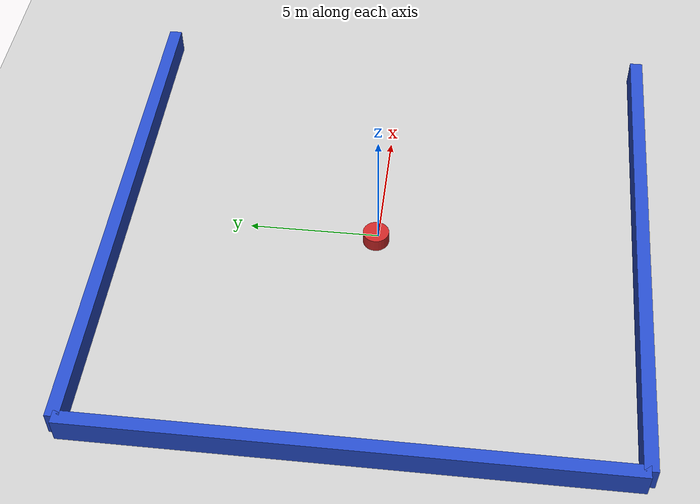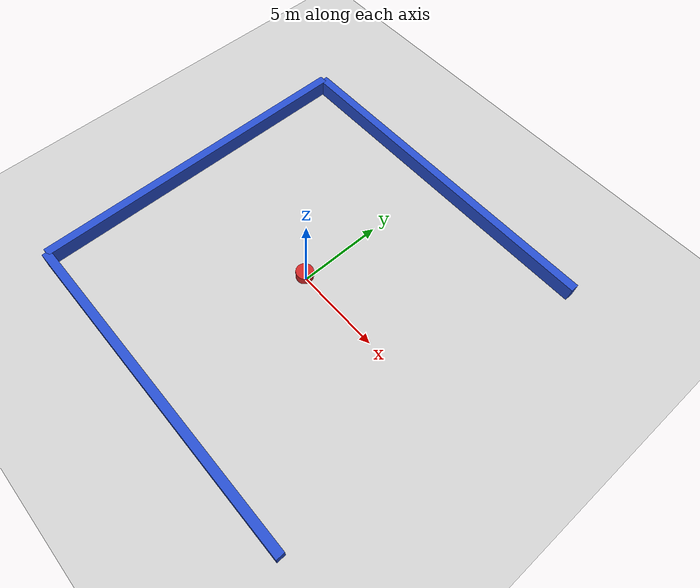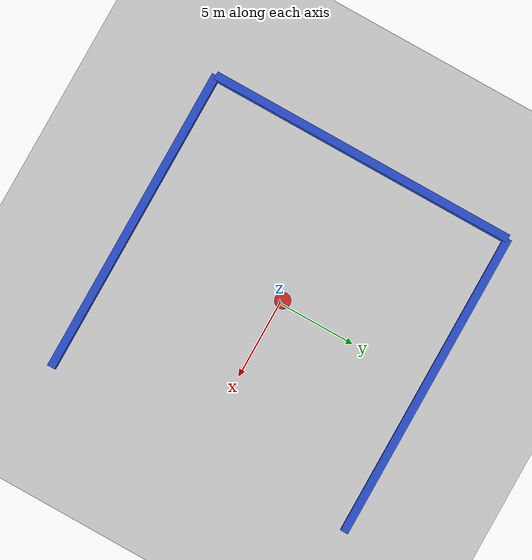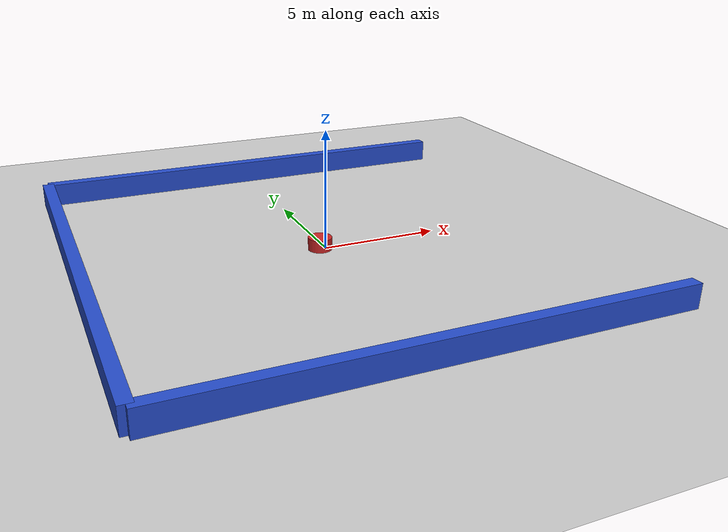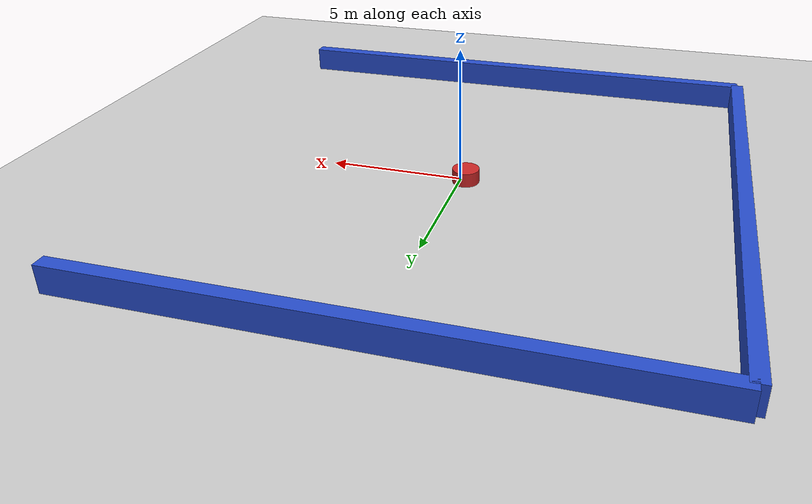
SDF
<?xml version="1.0" ?>
<sdf version="1.6">
   <world name="default">
    <model name="ground_plane">
      <static>1</static>
      <link name="link">
        <collision name="collision">
          <geometry><plane><normal>0 0 1</normal><size>100 100</size></plane></geometry>
          <surface><friction><ode><mu>100</mu><mu2>50</mu2></ode><torsional><ode/></torsional></friction><contact><ode/></contact></surface>
        </collision>
        <visual name="visual">
          <cast_shadows>0</cast_shadows>
          <geometry><plane><normal>0 0 1</normal><size>100 100</size></plane></geometry>
          <material><ambient>0.8 0.8 0.8 1</ambient><diffuse>0.8 0.8 0.8 1</diffuse><specular>0.01 0.01 0.01 1</specular></material>
        </visual>
      </link>
    </model>
    <light name="sun" type="directional">
      <cast_shadows>1</cast_shadows>
      <pose>0 0 10 0 0 0</pose>
      <diffuse>1 1 1 1</diffuse>
      <specular>0.1 0.1 0.1 1</specular>
      <attenuation><range>1000</range><constant>0.9</constant><linear>0.01</linear><quadratic>0.001</quadratic></attenuation>
      <direction>-0.5 0.5 -1</direction>
    </light>

    <model name='hardlibobs_170'>
      <static>1</static>
      <pose frame=''>-0.225000 0.075000 0.000000 0.000000 0.000000 0.000000</pose>
      <link name='link'>
        <inertial>
          <mass>1</mass>
          <inertia>
            <ixx>0.145833</ixx>
            <ixy>0</ixy>
            <ixz>0</ixz>
            <iyy>0.145833</iyy>
            <iyz>0</iyz>
            <izz>0.125</izz>
          </inertia>
        </inertial>
        <collision name='collision'>
           <geometry>
            <cylinder>
                <radius>0.5000</radius>
                 <length> 1 </length>
            </cylinder>
          </geometry>
           <surface>
            <contact>
              <ode/>
            </contact>
            <bounce/>
            <friction>
              <torsional>
                <ode/>
              </torsional>
              <ode/>
            </friction>
          </surface>
        </collision>
        <visual name='visual'>
           <geometry>
            <cylinder>
                <radius>0.5000</radius>
                 <length> 1 </length>
            </cylinder>
          </geometry>
          <material>
            <script>
              <name>Gazebo/Red</name>
              <uri>file://media/materials/scripts/gazebo.material</uri>
            </script>
          </material>
        </visual>
        <self_collide>0</self_collide>
        <kinematic>0</kinematic>
        <gravity>1</gravity>
      </link>
      <plugin name='hardlibobs_170' filename='hardlibobs_170.so'/>
    </model>

    <model name='hardlibobs_145'>
      <static>1</static>
      <pose frame=''>-0.225000 0.075000 0.000000 0.000000 0.000000 0.000000</pose>
      <link name='link'>
        <inertial>
          <mass>1</mass>
          <inertia>
            <ixx>0.145833</ixx>
            <ixy>0</ixy>
            <ixz>0</ixz>
            <iyy>0.145833</iyy>
            <iyz>0</iyz>
            <izz>0.125</izz>
          </inertia>
        </inertial>
        <collision name='collision'>
           <geometry>
            <cylinder>
                <radius>0.5000</radius>
                 <length> 1 </length>
            </cylinder>
          </geometry>
           <surface>
            <contact>
              <ode/>
            </contact>
            <bounce/>
            <friction>
              <torsional>
                <ode/>
              </torsional>
              <ode/>
            </friction>
          </surface>
        </collision>
        <visual name='visual'>
           <geometry>
            <cylinder>
                <radius>0.5000</radius>
                 <length> 1 </length>
            </cylinder>
          </geometry>
          <material>
            <script>
              <name>Gazebo/Red</name>
              <uri>file://media/materials/scripts/gazebo.material</uri>
            </script>
          </material>
        </visual>
        <self_collide>0</self_collide>
        <kinematic>0</kinematic>
        <gravity>1</gravity>
      </link>
      <plugin name='hardlibobs_145' filename='hardlibobs_145.so'/>
    </model>

    <model name='hardlibobs_57'>
      <static>1</static>
      <pose frame=''>-0.225000 0.075000 0.000000 0.000000 0.000000 0.000000</pose>
      <link name='link'>
        <inertial>
          <mass>1</mass>
          <inertia>
            <ixx>0.145833</ixx>
            <ixy>0</ixy>
            <ixz>0</ixz>
            <iyy>0.145833</iyy>
            <iyz>0</iyz>
            <izz>0.125</izz>
          </inertia>
        </inertial>
        <collision name='collision'>
           <geometry>
            <cylinder>
                <radius>0.5000</radius>
                 <length> 1 </length>
            </cylinder>
          </geometry>
           <surface>
            <contact>
              <ode/>
            </contact>
            <bounce/>
            <friction>
              <torsional>
                <ode/>
              </torsional>
              <ode/>
            </friction>
          </surface>
        </collision>
        <visual name='visual'>
           <geometry>
            <cylinder>
                <radius>0.5000</radius>
                 <length> 1 </length>
            </cylinder>
          </geometry>
          <material>
            <script>
              <name>Gazebo/Red</name>
              <uri>file://media/materials/scripts/gazebo.material</uri>
            </script>
          </material>
        </visual>
        <self_collide>0</self_collide>
        <kinematic>0</kinematic>
        <gravity>1</gravity>
      </link>
      <plugin name='hardlibobs_57' filename='hardlibobs_57.so'/>
    </model>

    <model name='hardlibobs_174'>
      <static>1</static>
      <pose frame=''>-0.225000 0.075000 0.000000 0.000000 0.000000 0.000000</pose>
      <link name='link'>
        <inertial>
          <mass>1</mass>
          <inertia>
            <ixx>0.145833</ixx>
            <ixy>0</ixy>
            <ixz>0</ixz>
            <iyy>0.145833</iyy>
            <iyz>0</iyz>
            <izz>0.125</izz>
          </inertia>
        </inertial>
        <collision name='collision'>
           <geometry>
            <cylinder>
                <radius>0.5000</radius>
                 <length> 1 </length>
            </cylinder>
          </geometry>
           <surface>
            <contact>
              <ode/>
            </contact>
            <bounce/>
            <friction>
              <torsional>
                <ode/>
              </torsional>
              <ode/>
            </friction>
          </surface>
        </collision>
        <visual name='visual'>
           <geometry>
            <cylinder>
                <radius>0.5000</radius>
                 <length> 1 </length>
            </cylinder>
          </geometry>
          <material>
            <script>
              <name>Gazebo/Red</name>
              <uri>file://media/materials/scripts/gazebo.material</uri>
            </script>
          </material>
        </visual>
        <self_collide>0</self_collide>
        <kinematic>0</kinematic>
        <gravity>1</gravity>
      </link>
      <plugin name='hardlibobs_174' filename='hardlibobs_174.so'/>
    </model>

    <model name='hardlibobs_78'>
      <static>1</static>
      <pose frame=''>-0.225000 0.075000 0.000000 0.000000 0.000000 0.000000</pose>
      <link name='link'>
        <inertial>
          <mass>1</mass>
          <inertia>
            <ixx>0.145833</ixx>
            <ixy>0</ixy>
            <ixz>0</ixz>
            <iyy>0.145833</iyy>
            <iyz>0</iyz>
            <izz>0.125</izz>
          </inertia>
        </inertial>
        <collision name='collision'>
           <geometry>
            <cylinder>
                <radius>0.5000</radius>
                 <length> 1 </length>
            </cylinder>
          </geometry>
           <surface>
            <contact>
              <ode/>
            </contact>
            <bounce/>
            <friction>
              <torsional>
                <ode/>
              </torsional>
              <ode/>
            </friction>
          </surface>
        </collision>
        <visual name='visual'>
           <geometry>
            <cylinder>
                <radius>0.5000</radius>
                 <length> 1 </length>
            </cylinder>
          </geometry>
          <material>
            <script>
              <name>Gazebo/Red</name>
              <uri>file://media/materials/scripts/gazebo.material</uri>
            </script>
          </material>
        </visual>
        <self_collide>0</self_collide>
        <kinematic>0</kinematic>
        <gravity>1</gravity>
      </link>
      <plugin name='hardlibobs_78' filename='hardlibobs_78.so'/>
    </model>

    <model name='hardlibobs_67'>
      <static>1</static>
      <pose frame=''>-0.225000 0.075000 0.000000 0.000000 0.000000 0.000000</pose>
      <link name='link'>
        <inertial>
          <mass>1</mass>
          <inertia>
            <ixx>0.145833</ixx>
            <ixy>0</ixy>
            <ixz>0</ixz>
            <iyy>0.145833</iyy>
            <iyz>0</iyz>
            <izz>0.125</izz>
          </inertia>
        </inertial>
        <collision name='collision'>
           <geometry>
            <cylinder>
                <radius>0.5000</radius>
                 <length> 1 </length>
            </cylinder>
          </geometry>
           <surface>
            <contact>
              <ode/>
            </contact>
            <bounce/>
            <friction>
              <torsional>
                <ode/>
              </torsional>
              <ode/>
            </friction>
          </surface>
        </collision>
        <visual name='visual'>
           <geometry>
            <cylinder>
                <radius>0.5000</radius>
                 <length> 1 </length>
            </cylinder>
          </geometry>
          <material>
            <script>
              <name>Gazebo/Red</name>
              <uri>file://media/materials/scripts/gazebo.material</uri>
            </script>
          </material>
        </visual>
        <self_collide>0</self_collide>
        <kinematic>0</kinematic>
        <gravity>1</gravity>
      </link>
      <plugin name='hardlibobs_67' filename='hardlibobs_67.so'/>
    </model>

    <model name='hardlibobs_137'>
      <static>1</static>
      <pose frame=''>-0.225000 0.075000 0.000000 0.000000 0.000000 0.000000</pose>
      <link name='link'>
        <inertial>
          <mass>1</mass>
          <inertia>
            <ixx>0.145833</ixx>
            <ixy>0</ixy>
            <ixz>0</ixz>
            <iyy>0.145833</iyy>
            <iyz>0</iyz>
            <izz>0.125</izz>
          </inertia>
        </inertial>
        <collision name='collision'>
           <geometry>
            <cylinder>
                <radius>0.5000</radius>
                 <length> 1 </length>
            </cylinder>
          </geometry>
           <surface>
            <contact>
              <ode/>
            </contact>
            <bounce/>
            <friction>
              <torsional>
                <ode/>
              </torsional>
              <ode/>
            </friction>
          </surface>
        </collision>
        <visual name='visual'>
           <geometry>
            <cylinder>
                <radius>0.5000</radius>
                 <length> 1 </length>
            </cylinder>
          </geometry>
          <material>
            <script>
              <name>Gazebo/Red</name>
              <uri>file://media/materials/scripts/gazebo.material</uri>
            </script>
          </material>
        </visual>
        <self_collide>0</self_collide>
        <kinematic>0</kinematic>
        <gravity>1</gravity>
      </link>
      <plugin name='hardlibobs_137' filename='hardlibobs_137.so'/>
    </model>

    <model name='hardlibobs_123'>
      <static>1</static>
      <pose frame=''>-0.225000 0.075000 0.000000 0.000000 0.000000 0.000000</pose>
      <link name='link'>
        <inertial>
          <mass>1</mass>
          <inertia>
            <ixx>0.145833</ixx>
            <ixy>0</ixy>
            <ixz>0</ixz>
            <iyy>0.145833</iyy>
            <iyz>0</iyz>
            <izz>0.125</izz>
          </inertia>
        </inertial>
        <collision name='collision'>
           <geometry>
            <cylinder>
                <radius>0.5000</radius>
                 <length> 1 </length>
            </cylinder>
          </geometry>
           <surface>
            <contact>
              <ode/>
            </contact>
            <bounce/>
            <friction>
              <torsional>
                <ode/>
              </torsional>
              <ode/>
            </friction>
          </surface>
        </collision>
        <visual name='visual'>
           <geometry>
            <cylinder>
                <radius>0.5000</radius>
                 <length> 1 </length>
            </cylinder>
          </geometry>
          <material>
            <script>
              <name>Gazebo/Red</name>
              <uri>file://media/materials/scripts/gazebo.material</uri>
            </script>
          </material>
        </visual>
        <self_collide>0</self_collide>
        <kinematic>0</kinematic>
        <gravity>1</gravity>
      </link>
      <plugin name='hardlibobs_123' filename='hardlibobs_123.so'/>
    </model>

    <model name='hardlibobs_176'>
      <static>1</static>
      <pose frame=''>-0.225000 0.075000 0.000000 0.000000 0.000000 0.000000</pose>
      <link name='link'>
        <inertial>
          <mass>1</mass>
          <inertia>
            <ixx>0.145833</ixx>
            <ixy>0</ixy>
            <ixz>0</ixz>
            <iyy>0.145833</iyy>
            <iyz>0</iyz>
            <izz>0.125</izz>
          </inertia>
        </inertial>
        <collision name='collision'>
           <geometry>
            <cylinder>
                <radius>0.5000</radius>
                 <length> 1 </length>
            </cylinder>
          </geometry>
           <surface>
            <contact>
              <ode/>
            </contact>
            <bounce/>
            <friction>
              <torsional>
                <ode/>
              </torsional>
              <ode/>
            </friction>
          </surface>
        </collision>
        <visual name='visual'>
           <geometry>
            <cylinder>
                <radius>0.5000</radius>
                 <length> 1 </length>
            </cylinder>
          </geometry>
          <material>
            <script>
              <name>Gazebo/Red</name>
              <uri>file://media/materials/scripts/gazebo.material</uri>
            </script>
          </material>
        </visual>
        <self_collide>0</self_collide>
        <kinematic>0</kinematic>
        <gravity>1</gravity>
      </link>
      <plugin name='hardlibobs_176' filename='hardlibobs_176.so'/>
    </model>

    <model name='hardlibobs_139'>
      <static>1</static>
      <pose frame=''>-0.225000 0.075000 0.000000 0.000000 0.000000 0.000000</pose>
      <link name='link'>
        <inertial>
          <mass>1</mass>
          <inertia>
            <ixx>0.145833</ixx>
            <ixy>0</ixy>
            <ixz>0</ixz>
            <iyy>0.145833</iyy>
            <iyz>0</iyz>
            <izz>0.125</izz>
          </inertia>
        </inertial>
        <collision name='collision'>
           <geometry>
            <cylinder>
                <radius>0.5000</radius>
                 <length> 1 </length>
            </cylinder>
          </geometry>
           <surface>
            <contact>
              <ode/>
            </contact>
            <bounce/>
            <friction>
              <torsional>
                <ode/>
              </torsional>
              <ode/>
            </friction>
          </surface>
        </collision>
        <visual name='visual'>
           <geometry>
            <cylinder>
                <radius>0.5000</radius>
                 <length> 1 </length>
            </cylinder>
          </geometry>
          <material>
            <script>
              <name>Gazebo/Red</name>
              <uri>file://media/materials/scripts/gazebo.material</uri>
            </script>
          </material>
        </visual>
        <self_collide>0</self_collide>
        <kinematic>0</kinematic>
        <gravity>1</gravity>
      </link>
      <plugin name='hardlibobs_139' filename='hardlibobs_139.so'/>
    </model>

    <model name='hardlibobs_53'>
      <static>1</static>
      <pose frame=''>-0.225000 0.075000 0.000000 0.000000 0.000000 0.000000</pose>
      <link name='link'>
        <inertial>
          <mass>1</mass>
          <inertia>
            <ixx>0.145833</ixx>
            <ixy>0</ixy>
            <ixz>0</ixz>
            <iyy>0.145833</iyy>
            <iyz>0</iyz>
            <izz>0.125</izz>
          </inertia>
        </inertial>
        <collision name='collision'>
           <geometry>
            <cylinder>
                <radius>0.5000</radius>
                 <length> 1 </length>
            </cylinder>
          </geometry>
           <surface>
            <contact>
              <ode/>
            </contact>
            <bounce/>
            <friction>
              <torsional>
                <ode/>
              </torsional>
              <ode/>
            </friction>
          </surface>
        </collision>
        <visual name='visual'>
           <geometry>
            <cylinder>
                <radius>0.5000</radius>
                 <length> 1 </length>
            </cylinder>
          </geometry>
          <material>
            <script>
              <name>Gazebo/Red</name>
              <uri>file://media/materials/scripts/gazebo.material</uri>
            </script>
          </material>
        </visual>
        <self_collide>0</self_collide>
        <kinematic>0</kinematic>
        <gravity>1</gravity>
      </link>
      <plugin name='hardlibobs_53' filename='hardlibobs_53.so'/>
    </model>

    <model name='hardlibobs_138'>
      <static>1</static>
      <pose frame=''>-0.225000 0.075000 0.000000 0.000000 0.000000 0.000000</pose>
      <link name='link'>
        <inertial>
          <mass>1</mass>
          <inertia>
            <ixx>0.145833</ixx>
            <ixy>0</ixy>
            <ixz>0</ixz>
            <iyy>0.145833</iyy>
            <iyz>0</iyz>
            <izz>0.125</izz>
          </inertia>
        </inertial>
        <collision name='collision'>
           <geometry>
            <cylinder>
                <radius>0.5000</radius>
                 <length> 1 </length>
            </cylinder>
          </geometry>
           <surface>
            <contact>
              <ode/>
            </contact>
            <bounce/>
            <friction>
              <torsional>
                <ode/>
              </torsional>
              <ode/>
            </friction>
          </surface>
        </collision>
        <visual name='visual'>
           <geometry>
            <cylinder>
                <radius>0.5000</radius>
                 <length> 1 </length>
            </cylinder>
          </geometry>
          <material>
            <script>
              <name>Gazebo/Red</name>
              <uri>file://media/materials/scripts/gazebo.material</uri>
            </script>
          </material>
        </visual>
        <self_collide>0</self_collide>
        <kinematic>0</kinematic>
        <gravity>1</gravity>
      </link>
      <plugin name='hardlibobs_138' filename='hardlibobs_138.so'/>
    </model>

      <model name="back_wall">
      <static>1</static>\   <pose>-10 0 .5 0 0 0</pose>        <link name="box_link">

	<collision name='collision'>
            <geometry>
              <box>
                <size>.5 20 1</size>
              </box>
            </geometry>
           <surface>
            <contact>
              <ode/>
            </contact>
            <bounce/>
            <friction>
              <torsional>
                <ode/>
              </torsional>
              <ode/>
            </friction>
          </surface>
        </collision>

          <visual name="visual">
            <geometry>
              <box>
                <size>.5 20 1</size>
              </box>
            </geometry>
          <material>
                 <script>
                     <name>Gazebo/Blue</name>
                         <uri>file://media/materials/scripts/gazebo.material</uri>
                         </script>
                     </material>
          </visual>
        </link>
      </model>
      <model name="top_wall">
      <static>1</static>
       <pose>0 10 .5 0 0 0</pose>        <link name="box_link">

	<collision name='collision'>
           <geometry>
              <box>
                <size>20 .5 1</size>
              </box>
            </geometry>
           <surface>
            <contact>
              <ode/>
            </contact>
            <bounce/>
            <friction>
              <torsional>
                <ode/>
              </torsional>
              <ode/>
            </friction>
          </surface>
        </collision>
          <visual name="visual">
            <geometry>
              <box>
                <size>20 .5 1</size>
              </box>
            </geometry>
          <material>
                 <script>
                     <name>Gazebo/Blue</name>
                         <uri>file://media/materials/scripts/gazebo.material</uri>
                         </script>
                     </material>
          </visual>
        </link>
      </model>
      <model name="bottom_wall">
      <static>1</static>
       <pose>0 -10 .5 0 0 0</pose>        <link name="box_link">
	<collision name='collision'>
            <geometry>
              <box>
                <size>20 .5 1</size>
              </box>
            </geometry>
           <surface>
            <contact>
              <ode/>
            </contact>
            <bounce/>
            <friction>
              <torsional>
                <ode/>
              </torsional>
              <ode/>
            </friction>
          </surface>
        </collision>
          <visual name="visual">
            <geometry>
              <box>
                <size>20 .5 1</size>
              </box>
            </geometry>
          <material>
                 <script>
                     <name>Gazebo/Blue</name>
                         <uri>file://media/materials/scripts/gazebo.material</uri>
                         </script>
                     </material>
          </visual>
        </link>
      </model>
   </world>
</sdf>
